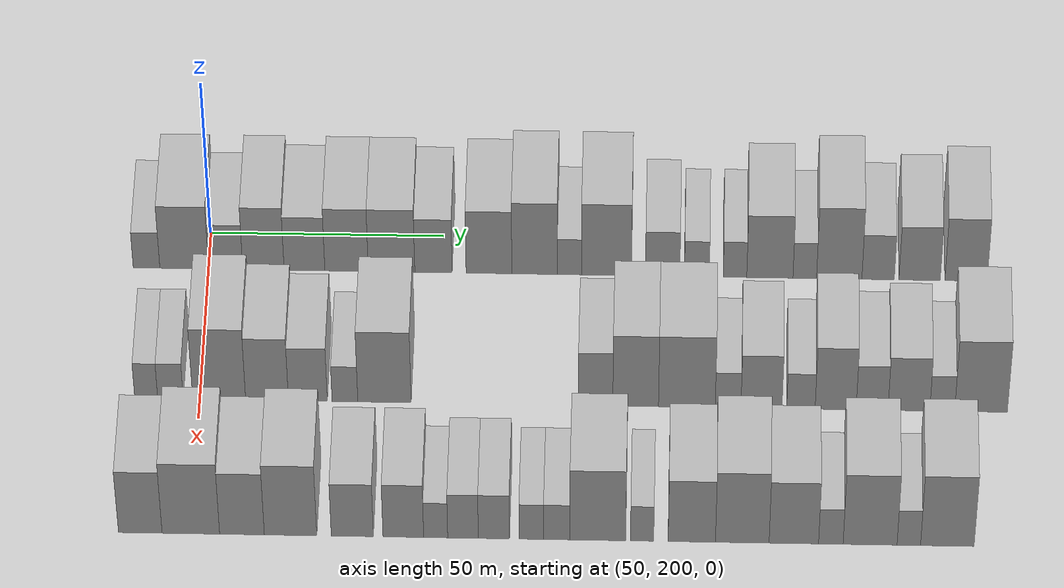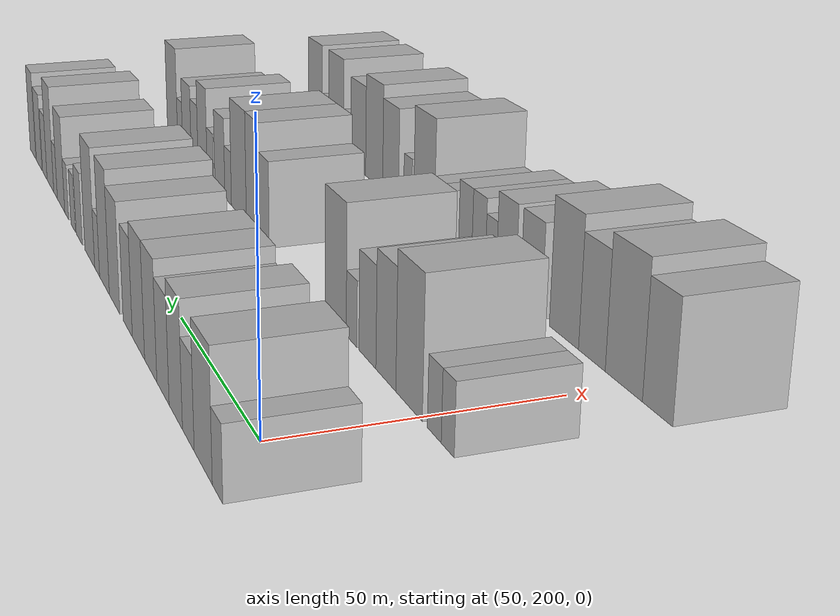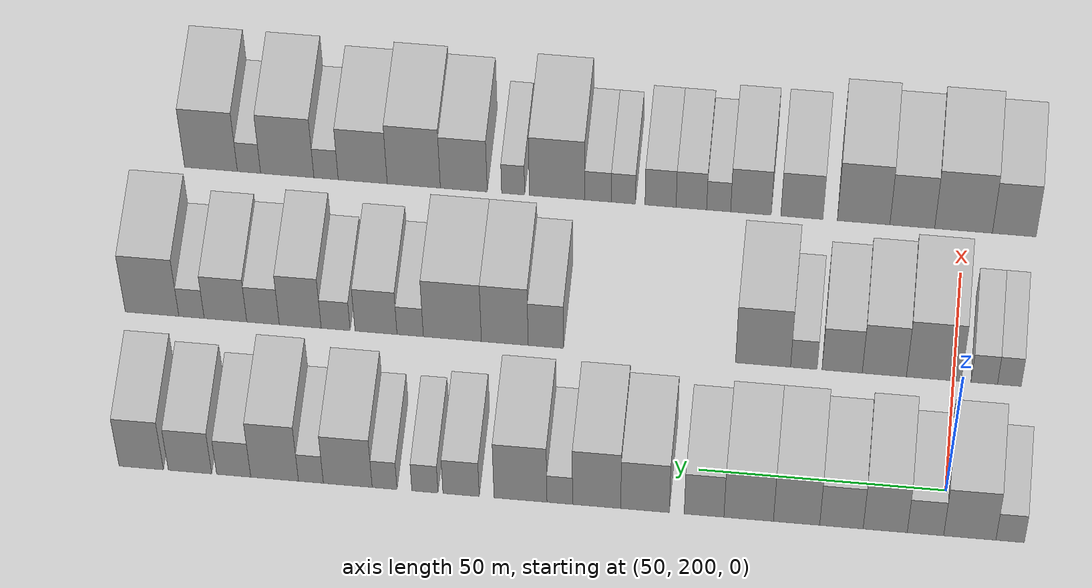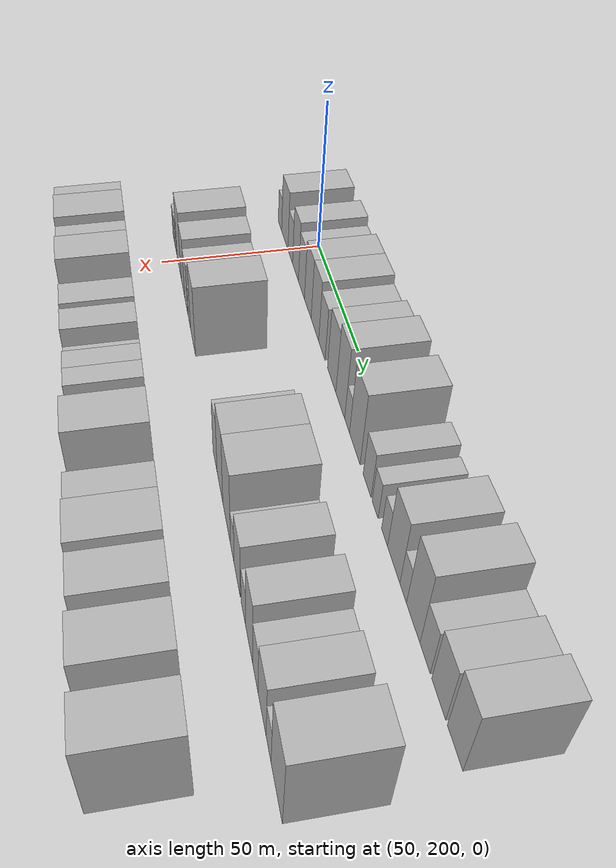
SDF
<sdf version="1.6">
 <world name="default">
  <model name="building_63">
   <static>1</static>
   <pose>50.0000 186.7097 0 0.000000 0.000000 0.000000</pose>
   <link name="link">
    <pose>0 0 6.00 0 0 0</pose>
    <collision name="collision"><geometry><box><size>20.0000 5.6965 12.0000</size></box></geometry></collision>
    <visual name="visual">
     <cast_shadows>0</cast_shadows>
     <geometry><box><size>20.0000 5.6965 12.0000</size></box></geometry>
     <material>
      <script>
       <uri>model://HANNAS_wall/materials/scripts</uri>
       <uri>model://HANNAS_wall/materials/textures</uri>
       <name>vrc/HANNAS_wall</name>
      </script>
     </material>
    </visual>
   </link>
  </model>
  <model name="building_64">
   <static>1</static>
   <pose>50.0000 194.7962 0 0.000000 0.000000 0.000000</pose>
   <link name="link">
    <pose>0 0 10.50 0 0 0</pose>
    <collision name="collision"><geometry><box><size>20.0000 10.4766 21.0000</size></box></geometry></collision>
    <visual name="visual">
     <cast_shadows>0</cast_shadows>
     <geometry><box><size>20.0000 10.4766 21.0000</size></box></geometry>
     <material>
      <script>
       <uri>model://HANNAS_wall/materials/scripts</uri>
       <uri>model://HANNAS_wall/materials/textures</uri>
       <name>vrc/HANNAS_wall</name>
      </script>
     </material>
    </visual>
   </link>
  </model>
  <model name="building_65">
   <static>1</static>
   <pose>50.0000 203.6863 0 0.000000 0.000000 0.000000</pose>
   <link name="link">
    <pose>0 0 7.50 0 0 0</pose>
    <collision name="collision"><geometry><box><size>20.0000 7.3036 15.0000</size></box></geometry></collision>
    <visual name="visual">
     <cast_shadows>0</cast_shadows>
     <geometry><box><size>20.0000 7.3036 15.0000</size></box></geometry>
     <material>
      <script>
       <uri>model://HANNAS_wall/materials/scripts</uri>
       <uri>model://HANNAS_wall/materials/textures</uri>
       <name>vrc/HANNAS_wall</name>
      </script>
     </material>
    </visual>
   </link>
  </model>
  <model name="building_66">
   <static>1</static>
   <pose>50.0000 211.7643 0 0.000000 0.000000 0.000000</pose>
   <link name="link">
    <pose>0 0 10.50 0 0 0</pose>
    <collision name="collision"><geometry><box><size>20.0000 8.8523 21.0000</size></box></geometry></collision>
    <visual name="visual">
     <cast_shadows>0</cast_shadows>
     <geometry><box><size>20.0000 8.8523 21.0000</size></box></geometry>
     <material>
      <script>
       <uri>model://HANNAS_wall/materials/scripts</uri>
       <uri>model://HANNAS_wall/materials/textures</uri>
       <name>vrc/HANNAS_wall</name>
      </script>
     </material>
    </visual>
   </link>
  </model>
  <model name="building_67">
   <static>1</static>
   <pose>50.0000 220.5535 0 0.000000 0.000000 0.000000</pose>
   <link name="link">
    <pose>0 0 9.00 0 0 0</pose>
    <collision name="collision"><geometry><box><size>20.0000 8.7261 18.0000</size></box></geometry></collision>
    <visual name="visual">
     <cast_shadows>0</cast_shadows>
     <geometry><box><size>20.0000 8.7261 18.0000</size></box></geometry>
     <material>
      <script>
       <uri>model://HANNAS_wall/materials/scripts</uri>
       <uri>model://HANNAS_wall/materials/textures</uri>
       <name>vrc/HANNAS_wall</name>
      </script>
     </material>
    </visual>
   </link>
  </model>
  <model name="building_68">
   <static>1</static>
   <pose>50.0000 229.5647 0 0.000000 0.000000 0.000000</pose>
   <link name="link">
    <pose>0 0 10.50 0 0 0</pose>
    <collision name="collision"><geometry><box><size>20.0000 9.2964 21.0000</size></box></geometry></collision>
    <visual name="visual">
     <cast_shadows>0</cast_shadows>
     <geometry><box><size>20.0000 9.2964 21.0000</size></box></geometry>
     <material>
      <script>
       <uri>model://HANNAS_wall/materials/scripts</uri>
       <uri>model://HANNAS_wall/materials/textures</uri>
       <name>vrc/HANNAS_wall</name>
      </script>
     </material>
    </visual>
   </link>
  </model>
  <model name="building_69">
   <static>1</static>
   <pose>50.0000 239.1935 0 0.000000 0.000000 0.000000</pose>
   <link name="link">
    <pose>0 0 10.50 0 0 0</pose>
    <collision name="collision"><geometry><box><size>20.0000 9.9613 21.0000</size></box></geometry></collision>
    <visual name="visual">
     <cast_shadows>0</cast_shadows>
     <geometry><box><size>20.0000 9.9613 21.0000</size></box></geometry>
     <material>
      <script>
       <uri>model://HANNAS_wall/materials/scripts</uri>
       <uri>model://HANNAS_wall/materials/textures</uri>
       <name>vrc/HANNAS_wall</name>
      </script>
     </material>
    </visual>
   </link>
  </model>
  <model name="building_70">
   <static>1</static>
   <pose>50.0000 248.1712 0 0.000000 0.000000 0.000000</pose>
   <link name="link">
    <pose>0 0 9.00 0 0 0</pose>
    <collision name="collision"><geometry><box><size>20.0000 7.9942 18.0000</size></box></geometry></collision>
    <visual name="visual">
     <cast_shadows>0</cast_shadows>
     <geometry><box><size>20.0000 7.9942 18.0000</size></box></geometry>
     <material>
      <script>
       <uri>model://HANNAS_wall/materials/scripts</uri>
       <uri>model://HANNAS_wall/materials/textures</uri>
       <name>vrc/HANNAS_wall</name>
      </script>
     </material>
    </visual>
   </link>
  </model>
  <model name="building_71">
   <static>1</static>
   <pose>50.0000 260.0640 0 0.000000 0.000000 0.000000</pose>
   <link name="link">
    <pose>0 0 10.50 0 0 0</pose>
    <collision name="collision"><geometry><box><size>20.0000 9.7915 21.0000</size></box></geometry></collision>
    <visual name="visual">
     <cast_shadows>0</cast_shadows>
     <geometry><box><size>20.0000 9.7915 21.0000</size></box></geometry>
     <material>
      <script>
       <uri>model://HANNAS_wall/materials/scripts</uri>
       <uri>model://HANNAS_wall/materials/textures</uri>
       <name>vrc/HANNAS_wall</name>
      </script>
     </material>
    </visual>
   </link>
  </model>
  <model name="building_72">
   <static>1</static>
   <pose>50.0000 269.8259 0 0.000000 0.000000 0.000000</pose>
   <link name="link">
    <pose>0 0 12.00 0 0 0</pose>
    <collision name="collision"><geometry><box><size>20.0000 9.7323 24.0000</size></box></geometry></collision>
    <visual name="visual">
     <cast_shadows>0</cast_shadows>
     <geometry><box><size>20.0000 9.7323 24.0000</size></box></geometry>
     <material>
      <script>
       <uri>model://HANNAS_wall/materials/scripts</uri>
       <uri>model://HANNAS_wall/materials/textures</uri>
       <name>vrc/HANNAS_wall</name>
      </script>
     </material>
    </visual>
   </link>
  </model>
  <model name="building_73">
   <static>1</static>
   <pose>50.0000 277.2664 0 0.000000 0.000000 0.000000</pose>
   <link name="link">
    <pose>0 0 6.00 0 0 0</pose>
    <collision name="collision"><geometry><box><size>20.0000 5.1487 12.0000</size></box></geometry></collision>
    <visual name="visual">
     <cast_shadows>0</cast_shadows>
     <geometry><box><size>20.0000 5.1487 12.0000</size></box></geometry>
     <material>
      <script>
       <uri>model://HANNAS_wall/materials/scripts</uri>
       <uri>model://HANNAS_wall/materials/textures</uri>
       <name>vrc/HANNAS_wall</name>
      </script>
     </material>
    </visual>
   </link>
  </model>
  <model name="building_74">
   <static>1</static>
   <pose>50.0000 285.1842 0 0.000000 0.000000 0.000000</pose>
   <link name="link">
    <pose>0 0 12.00 0 0 0</pose>
    <collision name="collision"><geometry><box><size>20.0000 10.6870 24.0000</size></box></geometry></collision>
    <visual name="visual">
     <cast_shadows>0</cast_shadows>
     <geometry><box><size>20.0000 10.6870 24.0000</size></box></geometry>
     <material>
      <script>
       <uri>model://HANNAS_wall/materials/scripts</uri>
       <uri>model://HANNAS_wall/materials/textures</uri>
       <name>vrc/HANNAS_wall</name>
      </script>
     </material>
    </visual>
   </link>
  </model>
  <model name="building_75">
   <static>1</static>
   <pose>50.0000 297.2003 0 0.000000 0.000000 0.000000</pose>
   <link name="link">
    <pose>0 0 7.50 0 0 0</pose>
    <collision name="collision"><geometry><box><size>20.0000 7.3452 15.0000</size></box></geometry></collision>
    <visual name="visual">
     <cast_shadows>0</cast_shadows>
     <geometry><box><size>20.0000 7.3452 15.0000</size></box></geometry>
     <material>
      <script>
       <uri>model://HANNAS_wall/materials/scripts</uri>
       <uri>model://HANNAS_wall/materials/textures</uri>
       <name>vrc/HANNAS_wall</name>
      </script>
     </material>
    </visual>
   </link>
  </model>
  <model name="building_76">
   <static>1</static>
   <pose>50.0000 304.5186 0 0.000000 0.000000 0.000000</pose>
   <link name="link">
    <pose>0 0 6.00 0 0 0</pose>
    <collision name="collision"><geometry><box><size>20.0000 5.2914 12.0000</size></box></geometry></collision>
    <visual name="visual">
     <cast_shadows>0</cast_shadows>
     <geometry><box><size>20.0000 5.2914 12.0000</size></box></geometry>
     <material>
      <script>
       <uri>model://HANNAS_wall/materials/scripts</uri>
       <uri>model://HANNAS_wall/materials/textures</uri>
       <name>vrc/HANNAS_wall</name>
      </script>
     </material>
    </visual>
   </link>
  </model>
  <model name="building_77">
   <static>1</static>
   <pose>50.0000 312.6815 0 0.000000 0.000000 0.000000</pose>
   <link name="link">
    <pose>0 0 6.00 0 0 0</pose>
    <collision name="collision"><geometry><box><size>20.0000 5.0343 12.0000</size></box></geometry></collision>
    <visual name="visual">
     <cast_shadows>0</cast_shadows>
     <geometry><box><size>20.0000 5.0343 12.0000</size></box></geometry>
     <material>
      <script>
       <uri>model://HANNAS_wall/materials/scripts</uri>
       <uri>model://HANNAS_wall/materials/textures</uri>
       <name>vrc/HANNAS_wall</name>
      </script>
     </material>
    </visual>
   </link>
  </model>
  <model name="building_78">
   <static>1</static>
   <pose>50.0000 320.1442 0 0.000000 0.000000 0.000000</pose>
   <link name="link">
    <pose>0 0 10.50 0 0 0</pose>
    <collision name="collision"><geometry><box><size>20.0000 9.8911 21.0000</size></box></geometry></collision>
    <visual name="visual">
     <cast_shadows>0</cast_shadows>
     <geometry><box><size>20.0000 9.8911 21.0000</size></box></geometry>
     <material>
      <script>
       <uri>model://HANNAS_wall/materials/scripts</uri>
       <uri>model://HANNAS_wall/materials/textures</uri>
       <name>vrc/HANNAS_wall</name>
      </script>
     </material>
    </visual>
   </link>
  </model>
  <model name="building_79">
   <static>1</static>
   <pose>50.0000 327.6104 0 0.000000 0.000000 0.000000</pose>
   <link name="link">
    <pose>0 0 6.00 0 0 0</pose>
    <collision name="collision"><geometry><box><size>20.0000 5.0414 12.0000</size></box></geometry></collision>
    <visual name="visual">
     <cast_shadows>0</cast_shadows>
     <geometry><box><size>20.0000 5.0414 12.0000</size></box></geometry>
     <material>
      <script>
       <uri>model://HANNAS_wall/materials/scripts</uri>
       <uri>model://HANNAS_wall/materials/textures</uri>
       <name>vrc/HANNAS_wall</name>
      </script>
     </material>
    </visual>
   </link>
  </model>
  <model name="building_80">
   <static>1</static>
   <pose>50.0000 334.9761 0 0.000000 0.000000 0.000000</pose>
   <link name="link">
    <pose>0 0 12.00 0 0 0</pose>
    <collision name="collision"><geometry><box><size>20.0000 9.6899 24.0000</size></box></geometry></collision>
    <visual name="visual">
     <cast_shadows>0</cast_shadows>
     <geometry><box><size>20.0000 9.6899 24.0000</size></box></geometry>
     <material>
      <script>
       <uri>model://HANNAS_wall/materials/scripts</uri>
       <uri>model://HANNAS_wall/materials/textures</uri>
       <name>vrc/HANNAS_wall</name>
      </script>
     </material>
    </visual>
   </link>
  </model>
  <model name="building_81">
   <static>1</static>
   <pose>50.0000 343.2819 0 0.000000 0.000000 0.000000</pose>
   <link name="link">
    <pose>0 0 7.50 0 0 0</pose>
    <collision name="collision"><geometry><box><size>20.0000 6.9216 15.0000</size></box></geometry></collision>
    <visual name="visual">
     <cast_shadows>0</cast_shadows>
     <geometry><box><size>20.0000 6.9216 15.0000</size></box></geometry>
     <material>
      <script>
       <uri>model://HANNAS_wall/materials/scripts</uri>
       <uri>model://HANNAS_wall/materials/textures</uri>
       <name>vrc/HANNAS_wall</name>
      </script>
     </material>
    </visual>
   </link>
  </model>
  <model name="building_82">
   <static>1</static>
   <pose>50.0000 352.1523 0 0.000000 0.000000 0.000000</pose>
   <link name="link">
    <pose>0 0 9.00 0 0 0</pose>
    <collision name="collision"><geometry><box><size>20.0000 8.8193 18.0000</size></box></geometry></collision>
    <visual name="visual">
     <cast_shadows>0</cast_shadows>
     <geometry><box><size>20.0000 8.8193 18.0000</size></box></geometry>
     <material>
      <script>
       <uri>model://HANNAS_wall/materials/scripts</uri>
       <uri>model://HANNAS_wall/materials/textures</uri>
       <name>vrc/HANNAS_wall</name>
      </script>
     </material>
    </visual>
   </link>
  </model>
  <model name="building_83">
   <static>1</static>
   <pose>50.0000 362.0714 0 0.000000 0.000000 0.000000</pose>
   <link name="link">
    <pose>0 0 10.50 0 0 0</pose>
    <collision name="collision"><geometry><box><size>20.0000 9.0189 21.0000</size></box></geometry></collision>
    <visual name="visual">
     <cast_shadows>0</cast_shadows>
     <geometry><box><size>20.0000 9.0189 21.0000</size></box></geometry>
     <material>
      <script>
       <uri>model://HANNAS_wall/materials/scripts</uri>
       <uri>model://HANNAS_wall/materials/textures</uri>
       <name>vrc/HANNAS_wall</name>
      </script>
     </material>
    </visual>
   </link>
  </model>
  <model name="building_143">
   <static>1</static>
   <pose>85.0000 188.6999 0 0.000000 0.000000 0.000000</pose>
   <link name="link">
    <pose>0 0 6.00 0 0 0</pose>
    <collision name="collision"><geometry><box><size>20.0000 4.8332 12.0000</size></box></geometry></collision>
    <visual name="visual">
     <cast_shadows>0</cast_shadows>
     <geometry><box><size>20.0000 4.8332 12.0000</size></box></geometry>
     <material>
      <script>
       <uri>model://HANNAS_wall/materials/scripts</uri>
       <uri>model://HANNAS_wall/materials/textures</uri>
       <name>vrc/HANNAS_wall</name>
      </script>
     </material>
    </visual>
   </link>
  </model>
  <model name="building_144">
   <static>1</static>
   <pose>85.0000 193.8190 0 0.000000 0.000000 0.000000</pose>
   <link name="link">
    <pose>0 0 6.00 0 0 0</pose>
    <collision name="collision"><geometry><box><size>20.0000 5.4050 12.0000</size></box></geometry></collision>
    <visual name="visual">
     <cast_shadows>0</cast_shadows>
     <geometry><box><size>20.0000 5.4050 12.0000</size></box></geometry>
     <material>
      <script>
       <uri>model://HANNAS_wall/materials/scripts</uri>
       <uri>model://HANNAS_wall/materials/textures</uri>
       <name>vrc/HANNAS_wall</name>
      </script>
     </material>
    </visual>
   </link>
  </model>
  <model name="building_145">
   <static>1</static>
   <pose>85.0000 204.1051 0 0.000000 0.000000 0.000000</pose>
   <link name="link">
    <pose>0 0 12.00 0 0 0</pose>
    <collision name="collision"><geometry><box><size>20.0000 11.1673 24.0000</size></box></geometry></collision>
    <visual name="visual">
     <cast_shadows>0</cast_shadows>
     <geometry><box><size>20.0000 11.1673 24.0000</size></box></geometry>
     <material>
      <script>
       <uri>model://HANNAS_wall/materials/scripts</uri>
       <uri>model://HANNAS_wall/materials/textures</uri>
       <name>vrc/HANNAS_wall</name>
      </script>
     </material>
    </visual>
   </link>
  </model>
  <model name="building_146">
   <static>1</static>
   <pose>85.0000 214.2014 0 0.000000 0.000000 0.000000</pose>
   <link name="link">
    <pose>0 0 10.50 0 0 0</pose>
    <collision name="collision"><geometry><box><size>20.0000 9.0252 21.0000</size></box></geometry></collision>
    <visual name="visual">
     <cast_shadows>0</cast_shadows>
     <geometry><box><size>20.0000 9.0252 21.0000</size></box></geometry>
     <material>
      <script>
       <uri>model://HANNAS_wall/materials/scripts</uri>
       <uri>model://HANNAS_wall/materials/textures</uri>
       <name>vrc/HANNAS_wall</name>
      </script>
     </material>
    </visual>
   </link>
  </model>
  <model name="building_147">
   <static>1</static>
   <pose>85.0000 222.8187 0 0.000000 0.000000 0.000000</pose>
   <link name="link">
    <pose>0 0 9.00 0 0 0</pose>
    <collision name="collision"><geometry><box><size>20.0000 8.2094 18.0000</size></box></geometry></collision>
    <visual name="visual">
     <cast_shadows>0</cast_shadows>
     <geometry><box><size>20.0000 8.2094 18.0000</size></box></geometry>
     <material>
      <script>
       <uri>model://HANNAS_wall/materials/scripts</uri>
       <uri>model://HANNAS_wall/materials/textures</uri>
       <name>vrc/HANNAS_wall</name>
      </script>
     </material>
    </visual>
   </link>
  </model>
  <model name="building_148">
   <static>1</static>
   <pose>85.0000 230.6374 0 0.000000 0.000000 0.000000</pose>
   <link name="link">
    <pose>0 0 6.00 0 0 0</pose>
    <collision name="collision"><geometry><box><size>20.0000 5.4280 12.0000</size></box></geometry></collision>
    <visual name="visual">
     <cast_shadows>0</cast_shadows>
     <geometry><box><size>20.0000 5.4280 12.0000</size></box></geometry>
     <material>
      <script>
       <uri>model://HANNAS_wall/materials/scripts</uri>
       <uri>model://HANNAS_wall/materials/textures</uri>
       <name>vrc/HANNAS_wall</name>
      </script>
     </material>
    </visual>
   </link>
  </model>
  <model name="building_149">
   <static>1</static>
   <pose>85.0000 238.9797 0 0.000000 0.000000 0.000000</pose>
   <link name="link">
    <pose>0 0 12.00 0 0 0</pose>
    <collision name="collision"><geometry><box><size>20.0000 11.2565 24.0000</size></box></geometry></collision>
    <visual name="visual">
     <cast_shadows>0</cast_shadows>
     <geometry><box><size>20.0000 11.2565 24.0000</size></box></geometry>
     <material>
      <script>
       <uri>model://HANNAS_wall/materials/scripts</uri>
       <uri>model://HANNAS_wall/materials/textures</uri>
       <name>vrc/HANNAS_wall</name>
      </script>
     </material>
    </visual>
   </link>
  </model>
  <model name="building_150">
   <static>1</static>
   <pose>85.0000 283.4918 0 0.000000 0.000000 0.000000</pose>
   <link name="link">
    <pose>0 0 9.00 0 0 0</pose>
    <collision name="collision"><geometry><box><size>20.0000 7.2559 18.0000</size></box></geometry></collision>
    <visual name="visual">
     <cast_shadows>0</cast_shadows>
     <geometry><box><size>20.0000 7.2559 18.0000</size></box></geometry>
     <material>
      <script>
       <uri>model://HANNAS_wall/materials/scripts</uri>
       <uri>model://HANNAS_wall/materials/textures</uri>
       <name>vrc/HANNAS_wall</name>
      </script>
     </material>
    </visual>
   </link>
  </model>
  <model name="building_151">
   <static>1</static>
   <pose>85.0000 291.9271 0 0.000000 0.000000 0.000000</pose>
   <link name="link">
    <pose>0 0 12.00 0 0 0</pose>
    <collision name="collision"><geometry><box><size>20.0000 9.6149 24.0000</size></box></geometry></collision>
    <visual name="visual">
     <cast_shadows>0</cast_shadows>
     <geometry><box><size>20.0000 9.6149 24.0000</size></box></geometry>
     <material>
      <script>
       <uri>model://HANNAS_wall/materials/scripts</uri>
       <uri>model://HANNAS_wall/materials/textures</uri>
       <name>vrc/HANNAS_wall</name>
      </script>
     </material>
    </visual>
   </link>
  </model>
  <model name="building_152">
   <static>1</static>
   <pose>85.0000 302.7061 0 0.000000 0.000000 0.000000</pose>
   <link name="link">
    <pose>0 0 12.00 0 0 0</pose>
    <collision name="collision"><geometry><box><size>20.0000 11.9430 24.0000</size></box></geometry></collision>
    <visual name="visual">
     <cast_shadows>0</cast_shadows>
     <geometry><box><size>20.0000 11.9430 24.0000</size></box></geometry>
     <material>
      <script>
       <uri>model://HANNAS_wall/materials/scripts</uri>
       <uri>model://HANNAS_wall/materials/textures</uri>
       <name>vrc/HANNAS_wall</name>
      </script>
     </material>
    </visual>
   </link>
  </model>
  <model name="building_153">
   <static>1</static>
   <pose>85.0000 311.3905 0 0.000000 0.000000 0.000000</pose>
   <link name="link">
    <pose>0 0 6.00 0 0 0</pose>
    <collision name="collision"><geometry><box><size>20.0000 5.4257 12.0000</size></box></geometry></collision>
    <visual name="visual">
     <cast_shadows>0</cast_shadows>
     <geometry><box><size>20.0000 5.4257 12.0000</size></box></geometry>
     <material>
      <script>
       <uri>model://HANNAS_wall/materials/scripts</uri>
       <uri>model://HANNAS_wall/materials/textures</uri>
       <name>vrc/HANNAS_wall</name>
      </script>
     </material>
    </visual>
   </link>
  </model>
  <model name="building_154">
   <static>1</static>
   <pose>85.0000 318.4247 0 0.000000 0.000000 0.000000</pose>
   <link name="link">
    <pose>0 0 9.00 0 0 0</pose>
    <collision name="collision"><geometry><box><size>20.0000 8.6428 18.0000</size></box></geometry></collision>
    <visual name="visual">
     <cast_shadows>0</cast_shadows>
     <geometry><box><size>20.0000 8.6428 18.0000</size></box></geometry>
     <material>
      <script>
       <uri>model://HANNAS_wall/materials/scripts</uri>
       <uri>model://HANNAS_wall/materials/textures</uri>
       <name>vrc/HANNAS_wall</name>
      </script>
     </material>
    </visual>
   </link>
  </model>
  <model name="building_155">
   <static>1</static>
   <pose>85.0000 326.7354 0 0.000000 0.000000 0.000000</pose>
   <link name="link">
    <pose>0 0 6.00 0 0 0</pose>
    <collision name="collision"><geometry><box><size>20.0000 5.9786 12.0000</size></box></geometry></collision>
    <visual name="visual">
     <cast_shadows>0</cast_shadows>
     <geometry><box><size>20.0000 5.9786 12.0000</size></box></geometry>
     <material>
      <script>
       <uri>model://HANNAS_wall/materials/scripts</uri>
       <uri>model://HANNAS_wall/materials/textures</uri>
       <name>vrc/HANNAS_wall</name>
      </script>
     </material>
    </visual>
   </link>
  </model>
  <model name="building_156">
   <static>1</static>
   <pose>85.0000 334.0470 0 0.000000 0.000000 0.000000</pose>
   <link name="link">
    <pose>0 0 10.50 0 0 0</pose>
    <collision name="collision"><geometry><box><size>20.0000 8.6446 21.0000</size></box></geometry></collision>
    <visual name="visual">
     <cast_shadows>0</cast_shadows>
     <geometry><box><size>20.0000 8.6446 21.0000</size></box></geometry>
     <material>
      <script>
       <uri>model://HANNAS_wall/materials/scripts</uri>
       <uri>model://HANNAS_wall/materials/textures</uri>
       <name>vrc/HANNAS_wall</name>
      </script>
     </material>
    </visual>
   </link>
  </model>
  <model name="building_157">
   <static>1</static>
   <pose>85.0000 341.7238 0 0.000000 0.000000 0.000000</pose>
   <link name="link">
    <pose>0 0 7.50 0 0 0</pose>
    <collision name="collision"><geometry><box><size>20.0000 6.7090 15.0000</size></box></geometry></collision>
    <visual name="visual">
     <cast_shadows>0</cast_shadows>
     <geometry><box><size>20.0000 6.7090 15.0000</size></box></geometry>
     <material>
      <script>
       <uri>model://HANNAS_wall/materials/scripts</uri>
       <uri>model://HANNAS_wall/materials/textures</uri>
       <name>vrc/HANNAS_wall</name>
      </script>
     </material>
    </visual>
   </link>
  </model>
  <model name="building_158">
   <static>1</static>
   <pose>85.0000 349.4756 0 0.000000 0.000000 0.000000</pose>
   <link name="link">
    <pose>0 0 9.00 0 0 0</pose>
    <collision name="collision"><geometry><box><size>20.0000 8.7945 18.0000</size></box></geometry></collision>
    <visual name="visual">
     <cast_shadows>0</cast_shadows>
     <geometry><box><size>20.0000 8.7945 18.0000</size></box></geometry>
     <material>
      <script>
       <uri>model://HANNAS_wall/materials/scripts</uri>
       <uri>model://HANNAS_wall/materials/textures</uri>
       <name>vrc/HANNAS_wall</name>
      </script>
     </material>
    </visual>
   </link>
  </model>
  <model name="building_159">
   <static>1</static>
   <pose>85.0000 356.4946 0 0.000000 0.000000 0.000000</pose>
   <link name="link">
    <pose>0 0 6.00 0 0 0</pose>
    <collision name="collision"><geometry><box><size>20.0000 5.2436 12.0000</size></box></geometry></collision>
    <visual name="visual">
     <cast_shadows>0</cast_shadows>
     <geometry><box><size>20.0000 5.2436 12.0000</size></box></geometry>
     <material>
      <script>
       <uri>model://HANNAS_wall/materials/scripts</uri>
       <uri>model://HANNAS_wall/materials/textures</uri>
       <name>vrc/HANNAS_wall</name>
      </script>
     </material>
    </visual>
   </link>
  </model>
  <model name="building_160">
   <static>1</static>
   <pose>85.0000 364.6530 0 0.000000 0.000000 0.000000</pose>
   <link name="link">
    <pose>0 0 12.00 0 0 0</pose>
    <collision name="collision"><geometry><box><size>20.0000 11.0730 24.0000</size></box></geometry></collision>
    <visual name="visual">
     <cast_shadows>0</cast_shadows>
     <geometry><box><size>20.0000 11.0730 24.0000</size></box></geometry>
     <material>
      <script>
       <uri>model://HANNAS_wall/materials/scripts</uri>
       <uri>model://HANNAS_wall/materials/textures</uri>
       <name>vrc/HANNAS_wall</name>
      </script>
     </material>
    </visual>
   </link>
  </model>
  <model name="building_216">
   <static>1</static>
   <pose>120.0000 189.5304 0 0.000000 0.000000 0.000000</pose>
   <link name="link">
    <pose>0 0 10.50 0 0 0</pose>
    <collision name="collision"><geometry><box><size>20.0000 9.0580 21.0000</size></box></geometry></collision>
    <visual name="visual">
     <cast_shadows>0</cast_shadows>
     <geometry><box><size>20.0000 9.0580 21.0000</size></box></geometry>
     <material>
      <script>
       <uri>model://HANNAS_wall/materials/scripts</uri>
       <uri>model://HANNAS_wall/materials/textures</uri>
       <name>vrc/HANNAS_wall</name>
      </script>
     </material>
    </visual>
   </link>
  </model>
  <model name="building_217">
   <static>1</static>
   <pose>120.0000 200.0389 0 0.000000 0.000000 0.000000</pose>
   <link name="link">
    <pose>0 0 12.00 0 0 0</pose>
    <collision name="collision"><geometry><box><size>20.0000 11.9590 24.0000</size></box></geometry></collision>
    <visual name="visual">
     <cast_shadows>0</cast_shadows>
     <geometry><box><size>20.0000 11.9590 24.0000</size></box></geometry>
     <material>
      <script>
       <uri>model://HANNAS_wall/materials/scripts</uri>
       <uri>model://HANNAS_wall/materials/textures</uri>
       <name>vrc/HANNAS_wall</name>
      </script>
     </material>
    </visual>
   </link>
  </model>
  <model name="building_218">
   <static>1</static>
   <pose>120.0000 210.6630 0 0.000000 0.000000 0.000000</pose>
   <link name="link">
    <pose>0 0 10.50 0 0 0</pose>
    <collision name="collision"><geometry><box><size>20.0000 9.2892 21.0000</size></box></geometry></collision>
    <visual name="visual">
     <cast_shadows>0</cast_shadows>
     <geometry><box><size>20.0000 9.2892 21.0000</size></box></geometry>
     <material>
      <script>
       <uri>model://HANNAS_wall/materials/scripts</uri>
       <uri>model://HANNAS_wall/materials/textures</uri>
       <name>vrc/HANNAS_wall</name>
      </script>
     </material>
    </visual>
   </link>
  </model>
  <model name="building_219">
   <static>1</static>
   <pose>120.0000 220.7605 0 0.000000 0.000000 0.000000</pose>
   <link name="link">
    <pose>0 0 12.00 0 0 0</pose>
    <collision name="collision"><geometry><box><size>20.0000 10.9058 24.0000</size></box></geometry></collision>
    <visual name="visual">
     <cast_shadows>0</cast_shadows>
     <geometry><box><size>20.0000 10.9058 24.0000</size></box></geometry>
     <material>
      <script>
       <uri>model://HANNAS_wall/materials/scripts</uri>
       <uri>model://HANNAS_wall/materials/textures</uri>
       <name>vrc/HANNAS_wall</name>
      </script>
     </material>
    </visual>
   </link>
  </model>
  <model name="building_220">
   <static>1</static>
   <pose>120.0000 233.5861 0 0.000000 0.000000 0.000000</pose>
   <link name="link">
    <pose>0 0 9.00 0 0 0</pose>
    <collision name="collision"><geometry><box><size>20.0000 8.7453 18.0000</size></box></geometry></collision>
    <visual name="visual">
     <cast_shadows>0</cast_shadows>
     <geometry><box><size>20.0000 8.7453 18.0000</size></box></geometry>
     <material>
      <script>
       <uri>model://HANNAS_wall/materials/scripts</uri>
       <uri>model://HANNAS_wall/materials/textures</uri>
       <name>vrc/HANNAS_wall</name>
      </script>
     </material>
    </visual>
   </link>
  </model>
  <model name="building_221">
   <static>1</static>
   <pose>120.0000 244.1786 0 0.000000 0.000000 0.000000</pose>
   <link name="link">
    <pose>0 0 9.00 0 0 0</pose>
    <collision name="collision"><geometry><box><size>20.0000 8.4397 18.0000</size></box></geometry></collision>
    <visual name="visual">
     <cast_shadows>0</cast_shadows>
     <geometry><box><size>20.0000 8.4397 18.0000</size></box></geometry>
     <material>
      <script>
       <uri>model://HANNAS_wall/materials/scripts</uri>
       <uri>model://HANNAS_wall/materials/textures</uri>
       <name>vrc/HANNAS_wall</name>
      </script>
     </material>
    </visual>
   </link>
  </model>
  <model name="building_222">
   <static>1</static>
   <pose>120.0000 250.8983 0 0.000000 0.000000 0.000000</pose>
   <link name="link">
    <pose>0 0 6.00 0 0 0</pose>
    <collision name="collision"><geometry><box><size>20.0000 4.9999 12.0000</size></box></geometry></collision>
    <visual name="visual">
     <cast_shadows>0</cast_shadows>
     <geometry><box><size>20.0000 4.9999 12.0000</size></box></geometry>
     <material>
      <script>
       <uri>model://HANNAS_wall/materials/scripts</uri>
       <uri>model://HANNAS_wall/materials/textures</uri>
       <name>vrc/HANNAS_wall</name>
      </script>
     </material>
    </visual>
   </link>
  </model>
  <model name="building_223">
   <static>1</static>
   <pose>120.0000 256.5769 0 0.000000 0.000000 0.000000</pose>
   <link name="link">
    <pose>0 0 7.50 0 0 0</pose>
    <collision name="collision"><geometry><box><size>20.0000 6.3572 15.0000</size></box></geometry></collision>
    <visual name="visual">
     <cast_shadows>0</cast_shadows>
     <geometry><box><size>20.0000 6.3572 15.0000</size></box></geometry>
     <material>
      <script>
       <uri>model://HANNAS_wall/materials/scripts</uri>
       <uri>model://HANNAS_wall/materials/textures</uri>
       <name>vrc/HANNAS_wall</name>
      </script>
     </material>
    </visual>
   </link>
  </model>
  <model name="building_224">
   <static>1</static>
   <pose>120.0000 262.9935 0 0.000000 0.000000 0.000000</pose>
   <link name="link">
    <pose>0 0 7.50 0 0 0</pose>
    <collision name="collision"><geometry><box><size>20.0000 6.4759 15.0000</size></box></geometry></collision>
    <visual name="visual">
     <cast_shadows>0</cast_shadows>
     <geometry><box><size>20.0000 6.4759 15.0000</size></box></geometry>
     <material>
      <script>
       <uri>model://HANNAS_wall/materials/scripts</uri>
       <uri>model://HANNAS_wall/materials/textures</uri>
       <name>vrc/HANNAS_wall</name>
      </script>
     </material>
    </visual>
   </link>
  </model>
  <model name="building_225">
   <static>1</static>
   <pose>120.0000 270.7646 0 0.000000 0.000000 0.000000</pose>
   <link name="link">
    <pose>0 0 6.00 0 0 0</pose>
    <collision name="collision"><geometry><box><size>20.0000 5.0663 12.0000</size></box></geometry></collision>
    <visual name="visual">
     <cast_shadows>0</cast_shadows>
     <geometry><box><size>20.0000 5.0663 12.0000</size></box></geometry>
     <material>
      <script>
       <uri>model://HANNAS_wall/materials/scripts</uri>
       <uri>model://HANNAS_wall/materials/textures</uri>
       <name>vrc/HANNAS_wall</name>
      </script>
     </material>
    </visual>
   </link>
  </model>
  <model name="building_226">
   <static>1</static>
   <pose>120.0000 276.0367 0 0.000000 0.000000 0.000000</pose>
   <link name="link">
    <pose>0 0 6.00 0 0 0</pose>
    <collision name="collision"><geometry><box><size>20.0000 5.4779 12.0000</size></box></geometry></collision>
    <visual name="visual">
     <cast_shadows>0</cast_shadows>
     <geometry><box><size>20.0000 5.4779 12.0000</size></box></geometry>
     <material>
      <script>
       <uri>model://HANNAS_wall/materials/scripts</uri>
       <uri>model://HANNAS_wall/materials/textures</uri>
       <name>vrc/HANNAS_wall</name>
      </script>
     </material>
    </visual>
   </link>
  </model>
  <model name="building_227">
   <static>1</static>
   <pose>120.0000 284.5555 0 0.000000 0.000000 0.000000</pose>
   <link name="link">
    <pose>0 0 12.00 0 0 0</pose>
    <collision name="collision"><geometry><box><size>20.0000 11.5598 24.0000</size></box></geometry></collision>
    <visual name="visual">
     <cast_shadows>0</cast_shadows>
     <geometry><box><size>20.0000 11.5598 24.0000</size></box></geometry>
     <material>
      <script>
       <uri>model://HANNAS_wall/materials/scripts</uri>
       <uri>model://HANNAS_wall/materials/textures</uri>
       <name>vrc/HANNAS_wall</name>
      </script>
     </material>
    </visual>
   </link>
  </model>
  <model name="building_228">
   <static>1</static>
   <pose>120.0000 293.7430 0 0.000000 0.000000 0.000000</pose>
   <link name="link">
    <pose>0 0 6.00 0 0 0</pose>
    <collision name="collision"><geometry><box><size>20.0000 4.8150 12.0000</size></box></geometry></collision>
    <visual name="visual">
     <cast_shadows>0</cast_shadows>
     <geometry><box><size>20.0000 4.8150 12.0000</size></box></geometry>
     <material>
      <script>
       <uri>model://HANNAS_wall/materials/scripts</uri>
       <uri>model://HANNAS_wall/materials/textures</uri>
       <name>vrc/HANNAS_wall</name>
      </script>
     </material>
    </visual>
   </link>
  </model>
  <model name="building_229">
   <static>1</static>
   <pose>120.0000 304.0560 0 0.000000 0.000000 0.000000</pose>
   <link name="link">
    <pose>0 0 10.50 0 0 0</pose>
    <collision name="collision"><geometry><box><size>20.0000 9.8111 21.0000</size></box></geometry></collision>
    <visual name="visual">
     <cast_shadows>0</cast_shadows>
     <geometry><box><size>20.0000 9.8111 21.0000</size></box></geometry>
     <material>
      <script>
       <uri>model://HANNAS_wall/materials/scripts</uri>
       <uri>model://HANNAS_wall/materials/textures</uri>
       <name>vrc/HANNAS_wall</name>
      </script>
     </material>
    </visual>
   </link>
  </model>
  <model name="building_230">
   <static>1</static>
   <pose>120.0000 314.5234 0 0.000000 0.000000 0.000000</pose>
   <link name="link">
    <pose>0 0 12.00 0 0 0</pose>
    <collision name="collision"><geometry><box><size>20.0000 11.1237 24.0000</size></box></geometry></collision>
    <visual name="visual">
     <cast_shadows>0</cast_shadows>
     <geometry><box><size>20.0000 11.1237 24.0000</size></box></geometry>
     <material>
      <script>
       <uri>model://HANNAS_wall/materials/scripts</uri>
       <uri>model://HANNAS_wall/materials/textures</uri>
       <name>vrc/HANNAS_wall</name>
      </script>
     </material>
    </visual>
   </link>
  </model>
  <model name="building_231">
   <static>1</static>
   <pose>120.0000 325.2143 0 0.000000 0.000000 0.000000</pose>
   <link name="link">
    <pose>0 0 10.50 0 0 0</pose>
    <collision name="collision"><geometry><box><size>20.0000 10.2581 21.0000</size></box></geometry></collision>
    <visual name="visual">
     <cast_shadows>0</cast_shadows>
     <geometry><box><size>20.0000 10.2581 21.0000</size></box></geometry>
     <material>
      <script>
       <uri>model://HANNAS_wall/materials/scripts</uri>
       <uri>model://HANNAS_wall/materials/textures</uri>
       <name>vrc/HANNAS_wall</name>
      </script>
     </material>
    </visual>
   </link>
  </model>
  <model name="building_232">
   <static>1</static>
   <pose>120.0000 332.8897 0 0.000000 0.000000 0.000000</pose>
   <link name="link">
    <pose>0 0 6.00 0 0 0</pose>
    <collision name="collision"><geometry><box><size>20.0000 5.0926 12.0000</size></box></geometry></collision>
    <visual name="visual">
     <cast_shadows>0</cast_shadows>
     <geometry><box><size>20.0000 5.0926 12.0000</size></box></geometry>
     <material>
      <script>
       <uri>model://HANNAS_wall/materials/scripts</uri>
       <uri>model://HANNAS_wall/materials/textures</uri>
       <name>vrc/HANNAS_wall</name>
      </script>
     </material>
    </visual>
   </link>
  </model>
  <model name="building_233">
   <static>1</static>
   <pose>120.0000 341.0300 0 0.000000 0.000000 0.000000</pose>
   <link name="link">
    <pose>0 0 12.00 0 0 0</pose>
    <collision name="collision"><geometry><box><size>20.0000 11.1879 24.0000</size></box></geometry></collision>
    <visual name="visual">
     <cast_shadows>0</cast_shadows>
     <geometry><box><size>20.0000 11.1879 24.0000</size></box></geometry>
     <material>
      <script>
       <uri>model://HANNAS_wall/materials/scripts</uri>
       <uri>model://HANNAS_wall/materials/textures</uri>
       <name>vrc/HANNAS_wall</name>
      </script>
     </material>
    </visual>
   </link>
  </model>
  <model name="building_234">
   <static>1</static>
   <pose>120.0000 349.0585 0 0.000000 0.000000 0.000000</pose>
   <link name="link">
    <pose>0 0 6.00 0 0 0</pose>
    <collision name="collision"><geometry><box><size>20.0000 4.8692 12.0000</size></box></geometry></collision>
    <visual name="visual">
     <cast_shadows>0</cast_shadows>
     <geometry><box><size>20.0000 4.8692 12.0000</size></box></geometry>
     <material>
      <script>
       <uri>model://HANNAS_wall/materials/scripts</uri>
       <uri>model://HANNAS_wall/materials/textures</uri>
       <name>vrc/HANNAS_wall</name>
      </script>
     </material>
    </visual>
   </link>
  </model>
  <model name="building_235">
   <static>1</static>
   <pose>120.0000 357.0394 0 0.000000 0.000000 0.000000</pose>
   <link name="link">
    <pose>0 0 12.00 0 0 0</pose>
    <collision name="collision"><geometry><box><size>20.0000 11.0924 24.0000</size></box></geometry></collision>
    <visual name="visual">
     <cast_shadows>0</cast_shadows>
     <geometry><box><size>20.0000 11.0924 24.0000</size></box></geometry>
     <material>
      <script>
       <uri>model://HANNAS_wall/materials/scripts</uri>
       <uri>model://HANNAS_wall/materials/textures</uri>
       <name>vrc/HANNAS_wall</name>
      </script>
     </material>
    </visual>
   </link>
  </model>
 </world>
</sdf>
